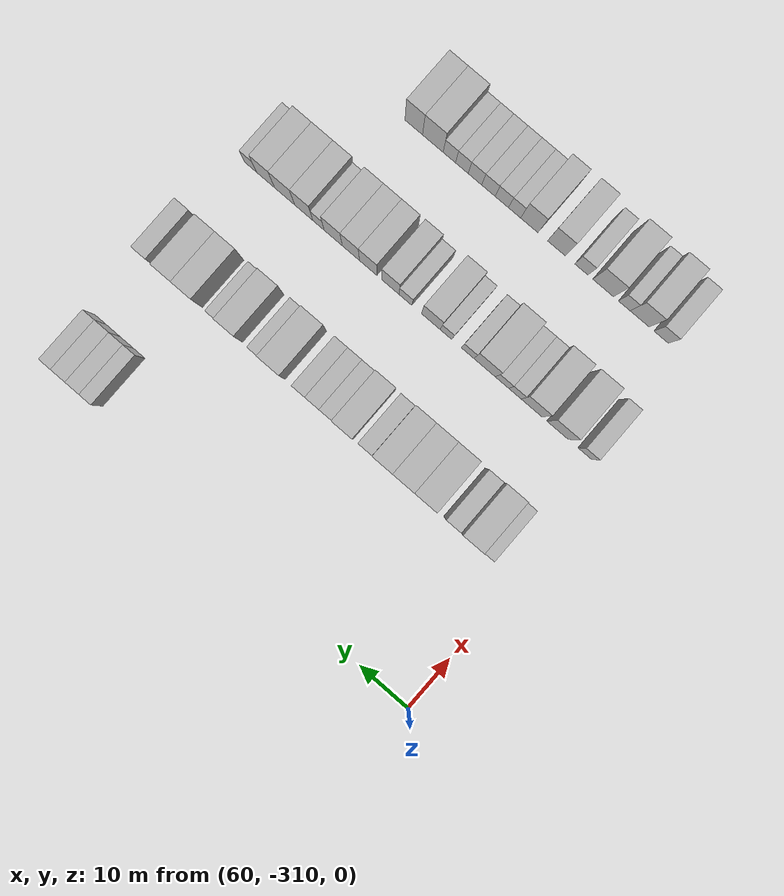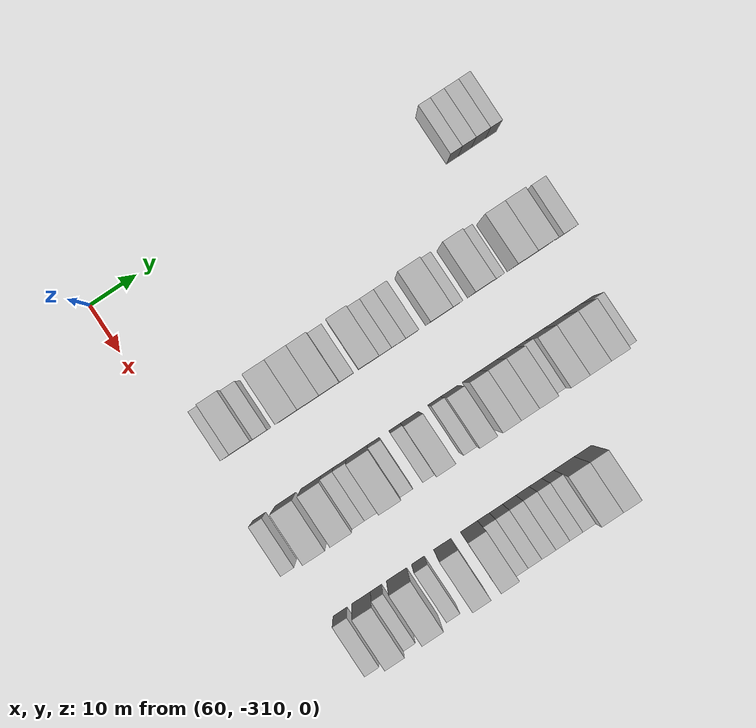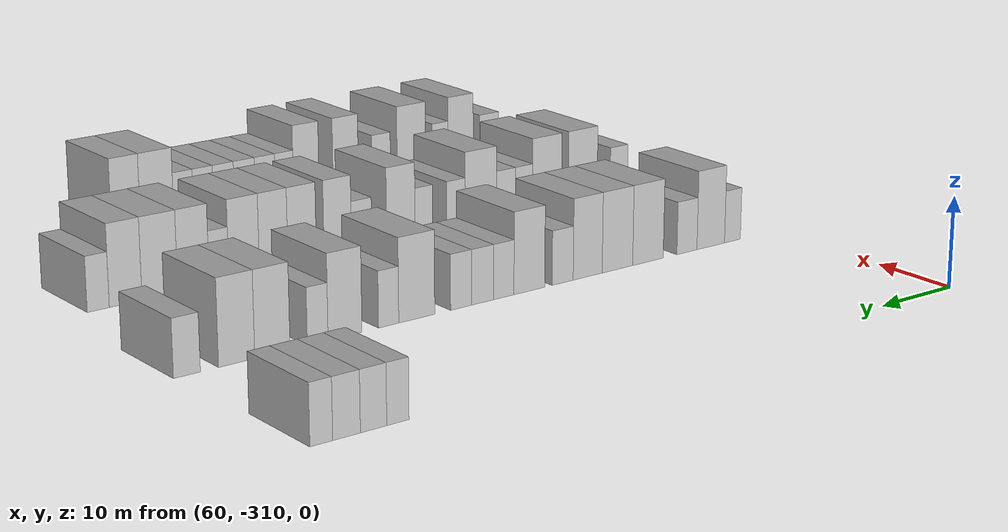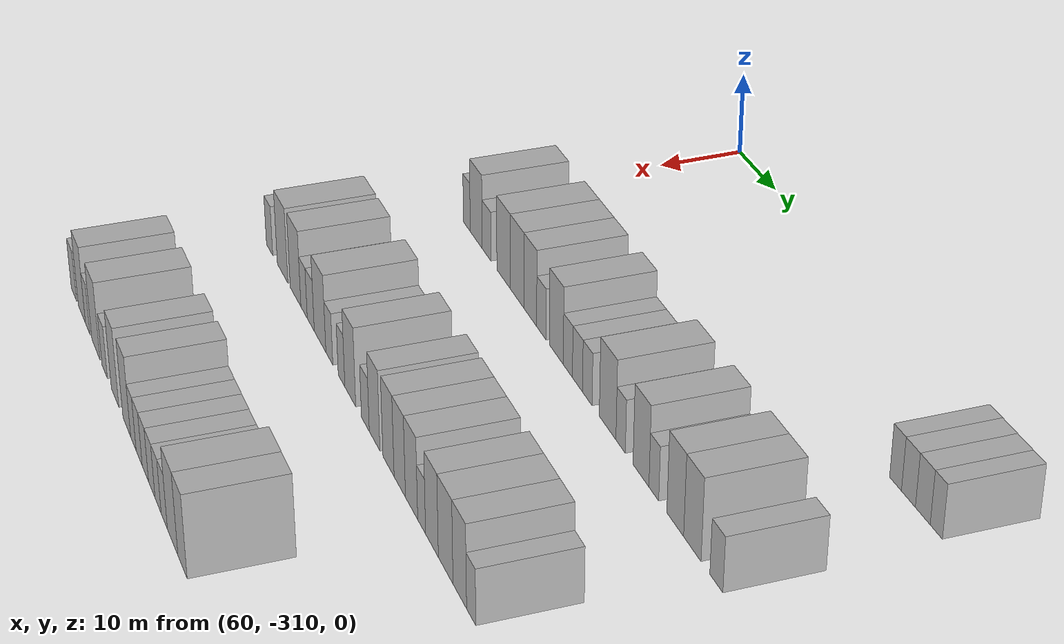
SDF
<sdf version="1.6">
 <world name="default">
  <model name="building_399">
   <static>1</static>
   <pose>69.0000 -241.7681 0 0.000000 0.000000 0.000000</pose>
   <link name="link">
    <pose>0 0 3.00 0 0 0</pose>
    <collision name="collision"><geometry><box><size>10.0000 2.4512 6.0000</size></box></geometry></collision>
    <visual name="visual">
     <cast_shadows>0</cast_shadows>
     <geometry><box><size>10.0000 2.4512 6.0000</size></box></geometry>
     <material>
      <script>
       <uri>model://HANNAS_wall/materials/scripts</uri>
       <uri>model://HANNAS_wall/materials/textures</uri>
       <name>vrc/HANNAS_wall</name>
      </script>
     </material>
    </visual>
   </link>
  </model>
  <model name="building_400">
   <static>1</static>
   <pose>69.0000 -239.1180 0 0.000000 0.000000 0.000000</pose>
   <link name="link">
    <pose>0 0 3.00 0 0 0</pose>
    <collision name="collision"><geometry><box><size>10.0000 2.8490 6.0000</size></box></geometry></collision>
    <visual name="visual">
     <cast_shadows>0</cast_shadows>
     <geometry><box><size>10.0000 2.8490 6.0000</size></box></geometry>
     <material>
      <script>
       <uri>model://HANNAS_wall/materials/scripts</uri>
       <uri>model://HANNAS_wall/materials/textures</uri>
       <name>vrc/HANNAS_wall</name>
      </script>
     </material>
    </visual>
   </link>
  </model>
  <model name="building_401">
   <static>1</static>
   <pose>69.0000 -236.2179 0 0.000000 0.000000 0.000000</pose>
   <link name="link">
    <pose>0 0 3.00 0 0 0</pose>
    <collision name="collision"><geometry><box><size>10.0000 2.9513 6.0000</size></box></geometry></collision>
    <visual name="visual">
     <cast_shadows>0</cast_shadows>
     <geometry><box><size>10.0000 2.9513 6.0000</size></box></geometry>
     <material>
      <script>
       <uri>model://HANNAS_wall/materials/scripts</uri>
       <uri>model://HANNAS_wall/materials/textures</uri>
       <name>vrc/HANNAS_wall</name>
      </script>
     </material>
    </visual>
   </link>
  </model>
  <model name="building_402">
   <static>1</static>
   <pose>69.0000 -233.5399 0 0.000000 0.000000 0.000000</pose>
   <link name="link">
    <pose>0 0 3.00 0 0 0</pose>
    <collision name="collision"><geometry><box><size>10.0000 2.4046 6.0000</size></box></geometry></collision>
    <visual name="visual">
     <cast_shadows>0</cast_shadows>
     <geometry><box><size>10.0000 2.4046 6.0000</size></box></geometry>
     <material>
      <script>
       <uri>model://HANNAS_wall/materials/scripts</uri>
       <uri>model://HANNAS_wall/materials/textures</uri>
       <name>vrc/HANNAS_wall</name>
      </script>
     </material>
    </visual>
   </link>
  </model>
  <model name="building_568">
   <static>1</static>
   <pose>91.0000 -303.2689 0 0.000000 0.000000 0.000000</pose>
   <link name="link">
    <pose>0 0 3.00 0 0 0</pose>
    <collision name="collision"><geometry><box><size>10.0000 2.4116 6.0000</size></box></geometry></collision>
    <visual name="visual">
     <cast_shadows>0</cast_shadows>
     <geometry><box><size>10.0000 2.4116 6.0000</size></box></geometry>
     <material>
      <script>
       <uri>model://HANNAS_wall/materials/scripts</uri>
       <uri>model://HANNAS_wall/materials/textures</uri>
       <name>vrc/HANNAS_wall</name>
      </script>
     </material>
    </visual>
   </link>
  </model>
  <model name="building_569">
   <static>1</static>
   <pose>91.0000 -299.9864 0 0.000000 0.000000 0.000000</pose>
   <link name="link">
    <pose>0 0 4.50 0 0 0</pose>
    <collision name="collision"><geometry><box><size>10.0000 4.1533 9.0000</size></box></geometry></collision>
    <visual name="visual">
     <cast_shadows>0</cast_shadows>
     <geometry><box><size>10.0000 4.1533 9.0000</size></box></geometry>
     <material>
      <script>
       <uri>model://HANNAS_wall/materials/scripts</uri>
       <uri>model://HANNAS_wall/materials/textures</uri>
       <name>vrc/HANNAS_wall</name>
      </script>
     </material>
    </visual>
   </link>
  </model>
  <model name="building_570">
   <static>1</static>
   <pose>91.0000 -296.4266 0 0.000000 0.000000 0.000000</pose>
   <link name="link">
    <pose>0 0 3.00 0 0 0</pose>
    <collision name="collision"><geometry><box><size>10.0000 2.9664 6.0000</size></box></geometry></collision>
    <visual name="visual">
     <cast_shadows>0</cast_shadows>
     <geometry><box><size>10.0000 2.9664 6.0000</size></box></geometry>
     <material>
      <script>
       <uri>model://HANNAS_wall/materials/scripts</uri>
       <uri>model://HANNAS_wall/materials/textures</uri>
       <name>vrc/HANNAS_wall</name>
      </script>
     </material>
    </visual>
   </link>
  </model>
  <model name="building_571">
   <static>1</static>
   <pose>91.0000 -290.7387 0 0.000000 0.000000 0.000000</pose>
   <link name="link">
    <pose>0 0 4.50 0 0 0</pose>
    <collision name="collision"><geometry><box><size>10.0000 4.4094 9.0000</size></box></geometry></collision>
    <visual name="visual">
     <cast_shadows>0</cast_shadows>
     <geometry><box><size>10.0000 4.4094 9.0000</size></box></geometry>
     <material>
      <script>
       <uri>model://HANNAS_wall/materials/scripts</uri>
       <uri>model://HANNAS_wall/materials/textures</uri>
       <name>vrc/HANNAS_wall</name>
      </script>
     </material>
    </visual>
   </link>
  </model>
  <model name="building_572">
   <static>1</static>
   <pose>91.0000 -286.3760 0 0.000000 0.000000 0.000000</pose>
   <link name="link">
    <pose>0 0 4.50 0 0 0</pose>
    <collision name="collision"><geometry><box><size>10.0000 4.3160 9.0000</size></box></geometry></collision>
    <visual name="visual">
     <cast_shadows>0</cast_shadows>
     <geometry><box><size>10.0000 4.3160 9.0000</size></box></geometry>
     <material>
      <script>
       <uri>model://HANNAS_wall/materials/scripts</uri>
       <uri>model://HANNAS_wall/materials/textures</uri>
       <name>vrc/HANNAS_wall</name>
      </script>
     </material>
    </visual>
   </link>
  </model>
  <model name="building_573">
   <static>1</static>
   <pose>91.0000 -282.2070 0 0.000000 0.000000 0.000000</pose>
   <link name="link">
    <pose>0 0 4.50 0 0 0</pose>
    <collision name="collision"><geometry><box><size>10.0000 4.0219 9.0000</size></box></geometry></collision>
    <visual name="visual">
     <cast_shadows>0</cast_shadows>
     <geometry><box><size>10.0000 4.0219 9.0000</size></box></geometry>
     <material>
      <script>
       <uri>model://HANNAS_wall/materials/scripts</uri>
       <uri>model://HANNAS_wall/materials/textures</uri>
       <name>vrc/HANNAS_wall</name>
      </script>
     </material>
    </visual>
   </link>
  </model>
  <model name="building_574">
   <static>1</static>
   <pose>91.0000 -278.7578 0 0.000000 0.000000 0.000000</pose>
   <link name="link">
    <pose>0 0 3.00 0 0 0</pose>
    <collision name="collision"><geometry><box><size>10.0000 2.8764 6.0000</size></box></geometry></collision>
    <visual name="visual">
     <cast_shadows>0</cast_shadows>
     <geometry><box><size>10.0000 2.8764 6.0000</size></box></geometry>
     <material>
      <script>
       <uri>model://HANNAS_wall/materials/scripts</uri>
       <uri>model://HANNAS_wall/materials/textures</uri>
       <name>vrc/HANNAS_wall</name>
      </script>
     </material>
    </visual>
   </link>
  </model>
  <model name="building_575">
   <static>1</static>
   <pose>91.0000 -274.2612 0 0.000000 0.000000 0.000000</pose>
   <link name="link">
    <pose>0 0 4.50 0 0 0</pose>
    <collision name="collision"><geometry><box><size>10.0000 4.1168 9.0000</size></box></geometry></collision>
    <visual name="visual">
     <cast_shadows>0</cast_shadows>
     <geometry><box><size>10.0000 4.1168 9.0000</size></box></geometry>
     <material>
      <script>
       <uri>model://HANNAS_wall/materials/scripts</uri>
       <uri>model://HANNAS_wall/materials/textures</uri>
       <name>vrc/HANNAS_wall</name>
      </script>
     </material>
    </visual>
   </link>
  </model>
  <model name="building_576">
   <static>1</static>
   <pose>91.0000 -270.8710 0 0.000000 0.000000 0.000000</pose>
   <link name="link">
    <pose>0 0 3.00 0 0 0</pose>
    <collision name="collision"><geometry><box><size>10.0000 2.6638 6.0000</size></box></geometry></collision>
    <visual name="visual">
     <cast_shadows>0</cast_shadows>
     <geometry><box><size>10.0000 2.6638 6.0000</size></box></geometry>
     <material>
      <script>
       <uri>model://HANNAS_wall/materials/scripts</uri>
       <uri>model://HANNAS_wall/materials/textures</uri>
       <name>vrc/HANNAS_wall</name>
      </script>
     </material>
    </visual>
   </link>
  </model>
  <model name="building_577">
   <static>1</static>
   <pose>91.0000 -268.1082 0 0.000000 0.000000 0.000000</pose>
   <link name="link">
    <pose>0 0 3.00 0 0 0</pose>
    <collision name="collision"><geometry><box><size>10.0000 2.8617 6.0000</size></box></geometry></collision>
    <visual name="visual">
     <cast_shadows>0</cast_shadows>
     <geometry><box><size>10.0000 2.8617 6.0000</size></box></geometry>
     <material>
      <script>
       <uri>model://HANNAS_wall/materials/scripts</uri>
       <uri>model://HANNAS_wall/materials/textures</uri>
       <name>vrc/HANNAS_wall</name>
      </script>
     </material>
    </visual>
   </link>
  </model>
  <model name="building_578">
   <static>1</static>
   <pose>91.0000 -265.3263 0 0.000000 0.000000 0.000000</pose>
   <link name="link">
    <pose>0 0 3.00 0 0 0</pose>
    <collision name="collision"><geometry><box><size>10.0000 2.7021 6.0000</size></box></geometry></collision>
    <visual name="visual">
     <cast_shadows>0</cast_shadows>
     <geometry><box><size>10.0000 2.7021 6.0000</size></box></geometry>
     <material>
      <script>
       <uri>model://HANNAS_wall/materials/scripts</uri>
       <uri>model://HANNAS_wall/materials/textures</uri>
       <name>vrc/HANNAS_wall</name>
      </script>
     </material>
    </visual>
   </link>
  </model>
  <model name="building_579">
   <static>1</static>
   <pose>91.0000 -259.7310 0 0.000000 0.000000 0.000000</pose>
   <link name="link">
    <pose>0 0 4.50 0 0 0</pose>
    <collision name="collision"><geometry><box><size>10.0000 4.4884 9.0000</size></box></geometry></collision>
    <visual name="visual">
     <cast_shadows>0</cast_shadows>
     <geometry><box><size>10.0000 4.4884 9.0000</size></box></geometry>
     <material>
      <script>
       <uri>model://HANNAS_wall/materials/scripts</uri>
       <uri>model://HANNAS_wall/materials/textures</uri>
       <name>vrc/HANNAS_wall</name>
      </script>
     </material>
    </visual>
   </link>
  </model>
  <model name="building_580">
   <static>1</static>
   <pose>91.0000 -256.2439 0 0.000000 0.000000 0.000000</pose>
   <link name="link">
    <pose>0 0 3.00 0 0 0</pose>
    <collision name="collision"><geometry><box><size>10.0000 2.4859 6.0000</size></box></geometry></collision>
    <visual name="visual">
     <cast_shadows>0</cast_shadows>
     <geometry><box><size>10.0000 2.4859 6.0000</size></box></geometry>
     <material>
      <script>
       <uri>model://HANNAS_wall/materials/scripts</uri>
       <uri>model://HANNAS_wall/materials/textures</uri>
       <name>vrc/HANNAS_wall</name>
      </script>
     </material>
    </visual>
   </link>
  </model>
  <model name="building_581">
   <static>1</static>
   <pose>91.0000 -250.9761 0 0.000000 0.000000 0.000000</pose>
   <link name="link">
    <pose>0 0 4.50 0 0 0</pose>
    <collision name="collision"><geometry><box><size>10.0000 4.0495 9.0000</size></box></geometry></collision>
    <visual name="visual">
     <cast_shadows>0</cast_shadows>
     <geometry><box><size>10.0000 4.0495 9.0000</size></box></geometry>
     <material>
      <script>
       <uri>model://HANNAS_wall/materials/scripts</uri>
       <uri>model://HANNAS_wall/materials/textures</uri>
       <name>vrc/HANNAS_wall</name>
      </script>
     </material>
    </visual>
   </link>
  </model>
  <model name="building_582">
   <static>1</static>
   <pose>91.0000 -247.7308 0 0.000000 0.000000 0.000000</pose>
   <link name="link">
    <pose>0 0 3.00 0 0 0</pose>
    <collision name="collision"><geometry><box><size>10.0000 2.4411 6.0000</size></box></geometry></collision>
    <visual name="visual">
     <cast_shadows>0</cast_shadows>
     <geometry><box><size>10.0000 2.4411 6.0000</size></box></geometry>
     <material>
      <script>
       <uri>model://HANNAS_wall/materials/scripts</uri>
       <uri>model://HANNAS_wall/materials/textures</uri>
       <name>vrc/HANNAS_wall</name>
      </script>
     </material>
    </visual>
   </link>
  </model>
  <model name="building_583">
   <static>1</static>
   <pose>91.0000 -242.4921 0 0.000000 0.000000 0.000000</pose>
   <link name="link">
    <pose>0 0 4.50 0 0 0</pose>
    <collision name="collision"><geometry><box><size>10.0000 4.0363 9.0000</size></box></geometry></collision>
    <visual name="visual">
     <cast_shadows>0</cast_shadows>
     <geometry><box><size>10.0000 4.0363 9.0000</size></box></geometry>
     <material>
      <script>
       <uri>model://HANNAS_wall/materials/scripts</uri>
       <uri>model://HANNAS_wall/materials/textures</uri>
       <name>vrc/HANNAS_wall</name>
      </script>
     </material>
    </visual>
   </link>
  </model>
  <model name="building_584">
   <static>1</static>
   <pose>91.0000 -238.4407 0 0.000000 0.000000 0.000000</pose>
   <link name="link">
    <pose>0 0 4.50 0 0 0</pose>
    <collision name="collision"><geometry><box><size>10.0000 4.0667 9.0000</size></box></geometry></collision>
    <visual name="visual">
     <cast_shadows>0</cast_shadows>
     <geometry><box><size>10.0000 4.0667 9.0000</size></box></geometry>
     <material>
      <script>
       <uri>model://HANNAS_wall/materials/scripts</uri>
       <uri>model://HANNAS_wall/materials/textures</uri>
       <name>vrc/HANNAS_wall</name>
      </script>
     </material>
    </visual>
   </link>
  </model>
  <model name="building_585">
   <static>1</static>
   <pose>91.0000 -232.9365 0 0.000000 0.000000 0.000000</pose>
   <link name="link">
    <pose>0 0 3.00 0 0 0</pose>
    <collision name="collision"><geometry><box><size>10.0000 2.9417 6.0000</size></box></geometry></collision>
    <visual name="visual">
     <cast_shadows>0</cast_shadows>
     <geometry><box><size>10.0000 2.9417 6.0000</size></box></geometry>
     <material>
      <script>
       <uri>model://HANNAS_wall/materials/scripts</uri>
       <uri>model://HANNAS_wall/materials/textures</uri>
       <name>vrc/HANNAS_wall</name>
      </script>
     </material>
    </visual>
   </link>
  </model>
  <model name="building_755">
   <static>1</static>
   <pose>113.0000 -305.3248 0 0.000000 0.000000 0.000000</pose>
   <link name="link">
    <pose>0 0 3.00 0 0 0</pose>
    <collision name="collision"><geometry><box><size>10.0000 2.7293 6.0000</size></box></geometry></collision>
    <visual name="visual">
     <cast_shadows>0</cast_shadows>
     <geometry><box><size>10.0000 2.7293 6.0000</size></box></geometry>
     <material>
      <script>
       <uri>model://HANNAS_wall/materials/scripts</uri>
       <uri>model://HANNAS_wall/materials/textures</uri>
       <name>vrc/HANNAS_wall</name>
      </script>
     </material>
    </visual>
   </link>
  </model>
  <model name="building_756">
   <static>1</static>
   <pose>113.0000 -299.7419 0 0.000000 0.000000 0.000000</pose>
   <link name="link">
    <pose>0 0 4.50 0 0 0</pose>
    <collision name="collision"><geometry><box><size>10.0000 4.4365 9.0000</size></box></geometry></collision>
    <visual name="visual">
     <cast_shadows>0</cast_shadows>
     <geometry><box><size>10.0000 4.4365 9.0000</size></box></geometry>
     <material>
      <script>
       <uri>model://HANNAS_wall/materials/scripts</uri>
       <uri>model://HANNAS_wall/materials/textures</uri>
       <name>vrc/HANNAS_wall</name>
      </script>
     </material>
    </visual>
   </link>
  </model>
  <model name="building_757">
   <static>1</static>
   <pose>113.0000 -294.3488 0 0.000000 0.000000 0.000000</pose>
   <link name="link">
    <pose>0 0 4.50 0 0 0</pose>
    <collision name="collision"><geometry><box><size>10.0000 4.3496 9.0000</size></box></geometry></collision>
    <visual name="visual">
     <cast_shadows>0</cast_shadows>
     <geometry><box><size>10.0000 4.3496 9.0000</size></box></geometry>
     <material>
      <script>
       <uri>model://HANNAS_wall/materials/scripts</uri>
       <uri>model://HANNAS_wall/materials/textures</uri>
       <name>vrc/HANNAS_wall</name>
      </script>
     </material>
    </visual>
   </link>
  </model>
  <model name="building_758">
   <static>1</static>
   <pose>113.0000 -290.9060 0 0.000000 0.000000 0.000000</pose>
   <link name="link">
    <pose>0 0 3.00 0 0 0</pose>
    <collision name="collision"><geometry><box><size>10.0000 2.5361 6.0000</size></box></geometry></collision>
    <visual name="visual">
     <cast_shadows>0</cast_shadows>
     <geometry><box><size>10.0000 2.5361 6.0000</size></box></geometry>
     <material>
      <script>
       <uri>model://HANNAS_wall/materials/scripts</uri>
       <uri>model://HANNAS_wall/materials/textures</uri>
       <name>vrc/HANNAS_wall</name>
      </script>
     </material>
    </visual>
   </link>
  </model>
  <model name="building_759">
   <static>1</static>
   <pose>113.0000 -288.2516 0 0.000000 0.000000 0.000000</pose>
   <link name="link">
    <pose>0 0 3.00 0 0 0</pose>
    <collision name="collision"><geometry><box><size>10.0000 2.7727 6.0000</size></box></geometry></collision>
    <visual name="visual">
     <cast_shadows>0</cast_shadows>
     <geometry><box><size>10.0000 2.7727 6.0000</size></box></geometry>
     <material>
      <script>
       <uri>model://HANNAS_wall/materials/scripts</uri>
       <uri>model://HANNAS_wall/materials/textures</uri>
       <name>vrc/HANNAS_wall</name>
      </script>
     </material>
    </visual>
   </link>
  </model>
  <model name="building_760">
   <static>1</static>
   <pose>113.0000 -284.6322 0 0.000000 0.000000 0.000000</pose>
   <link name="link">
    <pose>0 0 4.50 0 0 0</pose>
    <collision name="collision"><geometry><box><size>10.0000 4.4661 9.0000</size></box></geometry></collision>
    <visual name="visual">
     <cast_shadows>0</cast_shadows>
     <geometry><box><size>10.0000 4.4661 9.0000</size></box></geometry>
     <material>
      <script>
       <uri>model://HANNAS_wall/materials/scripts</uri>
       <uri>model://HANNAS_wall/materials/textures</uri>
       <name>vrc/HANNAS_wall</name>
      </script>
     </material>
    </visual>
   </link>
  </model>
  <model name="building_761">
   <static>1</static>
   <pose>113.0000 -281.0921 0 0.000000 0.000000 0.000000</pose>
   <link name="link">
    <pose>0 0 3.00 0 0 0</pose>
    <collision name="collision"><geometry><box><size>10.0000 2.6141 6.0000</size></box></geometry></collision>
    <visual name="visual">
     <cast_shadows>0</cast_shadows>
     <geometry><box><size>10.0000 2.6141 6.0000</size></box></geometry>
     <material>
      <script>
       <uri>model://HANNAS_wall/materials/scripts</uri>
       <uri>model://HANNAS_wall/materials/textures</uri>
       <name>vrc/HANNAS_wall</name>
      </script>
     </material>
    </visual>
   </link>
  </model>
  <model name="building_762">
   <static>1</static>
   <pose>113.0000 -276.5707 0 0.000000 0.000000 0.000000</pose>
   <link name="link">
    <pose>0 0 3.00 0 0 0</pose>
    <collision name="collision"><geometry><box><size>10.0000 2.4287 6.0000</size></box></geometry></collision>
    <visual name="visual">
     <cast_shadows>0</cast_shadows>
     <geometry><box><size>10.0000 2.4287 6.0000</size></box></geometry>
     <material>
      <script>
       <uri>model://HANNAS_wall/materials/scripts</uri>
       <uri>model://HANNAS_wall/materials/textures</uri>
       <name>vrc/HANNAS_wall</name>
      </script>
     </material>
    </visual>
   </link>
  </model>
  <model name="building_763">
   <static>1</static>
   <pose>113.0000 -273.4103 0 0.000000 0.000000 0.000000</pose>
   <link name="link">
    <pose>0 0 4.50 0 0 0</pose>
    <collision name="collision"><geometry><box><size>10.0000 3.8921 9.0000</size></box></geometry></collision>
    <visual name="visual">
     <cast_shadows>0</cast_shadows>
     <geometry><box><size>10.0000 3.8921 9.0000</size></box></geometry>
     <material>
      <script>
       <uri>model://HANNAS_wall/materials/scripts</uri>
       <uri>model://HANNAS_wall/materials/textures</uri>
       <name>vrc/HANNAS_wall</name>
      </script>
     </material>
    </visual>
   </link>
  </model>
  <model name="building_764">
   <static>1</static>
   <pose>113.0000 -268.1055 0 0.000000 0.000000 0.000000</pose>
   <link name="link">
    <pose>0 0 3.00 0 0 0</pose>
    <collision name="collision"><geometry><box><size>10.0000 2.7176 6.0000</size></box></geometry></collision>
    <visual name="visual">
     <cast_shadows>0</cast_shadows>
     <geometry><box><size>10.0000 2.7176 6.0000</size></box></geometry>
     <material>
      <script>
       <uri>model://HANNAS_wall/materials/scripts</uri>
       <uri>model://HANNAS_wall/materials/textures</uri>
       <name>vrc/HANNAS_wall</name>
      </script>
     </material>
    </visual>
   </link>
  </model>
  <model name="building_765">
   <static>1</static>
   <pose>113.0000 -264.9427 0 0.000000 0.000000 0.000000</pose>
   <link name="link">
    <pose>0 0 4.50 0 0 0</pose>
    <collision name="collision"><geometry><box><size>10.0000 3.6080 9.0000</size></box></geometry></collision>
    <visual name="visual">
     <cast_shadows>0</cast_shadows>
     <geometry><box><size>10.0000 3.6080 9.0000</size></box></geometry>
     <material>
      <script>
       <uri>model://HANNAS_wall/materials/scripts</uri>
       <uri>model://HANNAS_wall/materials/textures</uri>
       <name>vrc/HANNAS_wall</name>
      </script>
     </material>
    </visual>
   </link>
  </model>
  <model name="building_766">
   <static>1</static>
   <pose>113.0000 -260.3034 0 0.000000 0.000000 0.000000</pose>
   <link name="link">
    <pose>0 0 4.50 0 0 0</pose>
    <collision name="collision"><geometry><box><size>10.0000 3.6706 9.0000</size></box></geometry></collision>
    <visual name="visual">
     <cast_shadows>0</cast_shadows>
     <geometry><box><size>10.0000 3.6706 9.0000</size></box></geometry>
     <material>
      <script>
       <uri>model://HANNAS_wall/materials/scripts</uri>
       <uri>model://HANNAS_wall/materials/textures</uri>
       <name>vrc/HANNAS_wall</name>
      </script>
     </material>
    </visual>
   </link>
  </model>
  <model name="building_767">
   <static>1</static>
   <pose>113.0000 -256.6514 0 0.000000 0.000000 0.000000</pose>
   <link name="link">
    <pose>0 0 4.50 0 0 0</pose>
    <collision name="collision"><geometry><box><size>10.0000 3.6334 9.0000</size></box></geometry></collision>
    <visual name="visual">
     <cast_shadows>0</cast_shadows>
     <geometry><box><size>10.0000 3.6334 9.0000</size></box></geometry>
     <material>
      <script>
       <uri>model://HANNAS_wall/materials/scripts</uri>
       <uri>model://HANNAS_wall/materials/textures</uri>
       <name>vrc/HANNAS_wall</name>
      </script>
     </material>
    </visual>
   </link>
  </model>
  <model name="building_768">
   <static>1</static>
   <pose>113.0000 -252.9232 0 0.000000 0.000000 0.000000</pose>
   <link name="link">
    <pose>0 0 4.50 0 0 0</pose>
    <collision name="collision"><geometry><box><size>10.0000 3.8230 9.0000</size></box></geometry></collision>
    <visual name="visual">
     <cast_shadows>0</cast_shadows>
     <geometry><box><size>10.0000 3.8230 9.0000</size></box></geometry>
     <material>
      <script>
       <uri>model://HANNAS_wall/materials/scripts</uri>
       <uri>model://HANNAS_wall/materials/textures</uri>
       <name>vrc/HANNAS_wall</name>
      </script>
     </material>
    </visual>
   </link>
  </model>
  <model name="building_769">
   <static>1</static>
   <pose>113.0000 -249.8101 0 0.000000 0.000000 0.000000</pose>
   <link name="link">
    <pose>0 0 3.00 0 0 0</pose>
    <collision name="collision"><geometry><box><size>10.0000 2.4033 6.0000</size></box></geometry></collision>
    <visual name="visual">
     <cast_shadows>0</cast_shadows>
     <geometry><box><size>10.0000 2.4033 6.0000</size></box></geometry>
     <material>
      <script>
       <uri>model://HANNAS_wall/materials/scripts</uri>
       <uri>model://HANNAS_wall/materials/textures</uri>
       <name>vrc/HANNAS_wall</name>
      </script>
     </material>
    </visual>
   </link>
  </model>
  <model name="building_770">
   <static>1</static>
   <pose>113.0000 -246.6991 0 0.000000 0.000000 0.000000</pose>
   <link name="link">
    <pose>0 0 4.50 0 0 0</pose>
    <collision name="collision"><geometry><box><size>10.0000 3.8186 9.0000</size></box></geometry></collision>
    <visual name="visual">
     <cast_shadows>0</cast_shadows>
     <geometry><box><size>10.0000 3.8186 9.0000</size></box></geometry>
     <material>
      <script>
       <uri>model://HANNAS_wall/materials/scripts</uri>
       <uri>model://HANNAS_wall/materials/textures</uri>
       <name>vrc/HANNAS_wall</name>
      </script>
     </material>
    </visual>
   </link>
  </model>
  <model name="building_771">
   <static>1</static>
   <pose>113.0000 -242.6615 0 0.000000 0.000000 0.000000</pose>
   <link name="link">
    <pose>0 0 4.50 0 0 0</pose>
    <collision name="collision"><geometry><box><size>10.0000 4.2566 9.0000</size></box></geometry></collision>
    <visual name="visual">
     <cast_shadows>0</cast_shadows>
     <geometry><box><size>10.0000 4.2566 9.0000</size></box></geometry>
     <material>
      <script>
       <uri>model://HANNAS_wall/materials/scripts</uri>
       <uri>model://HANNAS_wall/materials/textures</uri>
       <name>vrc/HANNAS_wall</name>
      </script>
     </material>
    </visual>
   </link>
  </model>
  <model name="building_772">
   <static>1</static>
   <pose>113.0000 -238.6235 0 0.000000 0.000000 0.000000</pose>
   <link name="link">
    <pose>0 0 4.50 0 0 0</pose>
    <collision name="collision"><geometry><box><size>10.0000 3.8193 9.0000</size></box></geometry></collision>
    <visual name="visual">
     <cast_shadows>0</cast_shadows>
     <geometry><box><size>10.0000 3.8193 9.0000</size></box></geometry>
     <material>
      <script>
       <uri>model://HANNAS_wall/materials/scripts</uri>
       <uri>model://HANNAS_wall/materials/textures</uri>
       <name>vrc/HANNAS_wall</name>
      </script>
     </material>
    </visual>
   </link>
  </model>
  <model name="building_773">
   <static>1</static>
   <pose>113.0000 -235.4435 0 0.000000 0.000000 0.000000</pose>
   <link name="link">
    <pose>0 0 3.00 0 0 0</pose>
    <collision name="collision"><geometry><box><size>10.0000 2.5408 6.0000</size></box></geometry></collision>
    <visual name="visual">
     <cast_shadows>0</cast_shadows>
     <geometry><box><size>10.0000 2.5408 6.0000</size></box></geometry>
     <material>
      <script>
       <uri>model://HANNAS_wall/materials/scripts</uri>
       <uri>model://HANNAS_wall/materials/textures</uri>
       <name>vrc/HANNAS_wall</name>
      </script>
     </material>
    </visual>
   </link>
  </model>
  <model name="building_949">
   <static>1</static>
   <pose>135.0000 -302.6649 0 0.000000 0.000000 0.000000</pose>
   <link name="link">
    <pose>0 0 3.00 0 0 0</pose>
    <collision name="collision"><geometry><box><size>10.0000 2.9753 6.0000</size></box></geometry></collision>
    <visual name="visual">
     <cast_shadows>0</cast_shadows>
     <geometry><box><size>10.0000 2.9753 6.0000</size></box></geometry>
     <material>
      <script>
       <uri>model://HANNAS_wall/materials/scripts</uri>
       <uri>model://HANNAS_wall/materials/textures</uri>
       <name>vrc/HANNAS_wall</name>
      </script>
     </material>
    </visual>
   </link>
  </model>
  <model name="building_950">
   <static>1</static>
   <pose>135.0000 -298.2124 0 0.000000 0.000000 0.000000</pose>
   <link name="link">
    <pose>0 0 4.50 0 0 0</pose>
    <collision name="collision"><geometry><box><size>10.0000 3.9296 9.0000</size></box></geometry></collision>
    <visual name="visual">
     <cast_shadows>0</cast_shadows>
     <geometry><box><size>10.0000 3.9296 9.0000</size></box></geometry>
     <material>
      <script>
       <uri>model://HANNAS_wall/materials/scripts</uri>
       <uri>model://HANNAS_wall/materials/textures</uri>
       <name>vrc/HANNAS_wall</name>
      </script>
     </material>
    </visual>
   </link>
  </model>
  <model name="building_951">
   <static>1</static>
   <pose>135.0000 -295.0360 0 0.000000 0.000000 0.000000</pose>
   <link name="link">
    <pose>0 0 3.00 0 0 0</pose>
    <collision name="collision"><geometry><box><size>10.0000 2.4233 6.0000</size></box></geometry></collision>
    <visual name="visual">
     <cast_shadows>0</cast_shadows>
     <geometry><box><size>10.0000 2.4233 6.0000</size></box></geometry>
     <material>
      <script>
       <uri>model://HANNAS_wall/materials/scripts</uri>
       <uri>model://HANNAS_wall/materials/textures</uri>
       <name>vrc/HANNAS_wall</name>
      </script>
     </material>
    </visual>
   </link>
  </model>
  <model name="building_952">
   <static>1</static>
   <pose>135.0000 -290.6653 0 0.000000 0.000000 0.000000</pose>
   <link name="link">
    <pose>0 0 4.50 0 0 0</pose>
    <collision name="collision"><geometry><box><size>10.0000 4.3181 9.0000</size></box></geometry></collision>
    <visual name="visual">
     <cast_shadows>0</cast_shadows>
     <geometry><box><size>10.0000 4.3181 9.0000</size></box></geometry>
     <material>
      <script>
       <uri>model://HANNAS_wall/materials/scripts</uri>
       <uri>model://HANNAS_wall/materials/textures</uri>
       <name>vrc/HANNAS_wall</name>
      </script>
     </material>
    </visual>
   </link>
  </model>
  <model name="building_953">
   <static>1</static>
   <pose>135.0000 -286.1339 0 0.000000 0.000000 0.000000</pose>
   <link name="link">
    <pose>0 0 3.00 0 0 0</pose>
    <collision name="collision"><geometry><box><size>10.0000 2.7447 6.0000</size></box></geometry></collision>
    <visual name="visual">
     <cast_shadows>0</cast_shadows>
     <geometry><box><size>10.0000 2.7447 6.0000</size></box></geometry>
     <material>
      <script>
       <uri>model://HANNAS_wall/materials/scripts</uri>
       <uri>model://HANNAS_wall/materials/textures</uri>
       <name>vrc/HANNAS_wall</name>
      </script>
     </material>
    </visual>
   </link>
  </model>
  <model name="building_954">
   <static>1</static>
   <pose>135.0000 -280.9197 0 0.000000 0.000000 0.000000</pose>
   <link name="link">
    <pose>0 0 4.50 0 0 0</pose>
    <collision name="collision"><geometry><box><size>10.0000 3.6836 9.0000</size></box></geometry></collision>
    <visual name="visual">
     <cast_shadows>0</cast_shadows>
     <geometry><box><size>10.0000 3.6836 9.0000</size></box></geometry>
     <material>
      <script>
       <uri>model://HANNAS_wall/materials/scripts</uri>
       <uri>model://HANNAS_wall/materials/textures</uri>
       <name>vrc/HANNAS_wall</name>
      </script>
     </material>
    </visual>
   </link>
  </model>
  <model name="building_955">
   <static>1</static>
   <pose>135.0000 -275.2554 0 0.000000 0.000000 0.000000</pose>
   <link name="link">
    <pose>0 0 4.50 0 0 0</pose>
    <collision name="collision"><geometry><box><size>10.0000 3.6450 9.0000</size></box></geometry></collision>
    <visual name="visual">
     <cast_shadows>0</cast_shadows>
     <geometry><box><size>10.0000 3.6450 9.0000</size></box></geometry>
     <material>
      <script>
       <uri>model://HANNAS_wall/materials/scripts</uri>
       <uri>model://HANNAS_wall/materials/textures</uri>
       <name>vrc/HANNAS_wall</name>
      </script>
     </material>
    </visual>
   </link>
  </model>
  <model name="building_956">
   <static>1</static>
   <pose>135.0000 -272.1571 0 0.000000 0.000000 0.000000</pose>
   <link name="link">
    <pose>0 0 3.00 0 0 0</pose>
    <collision name="collision"><geometry><box><size>10.0000 2.5516 6.0000</size></box></geometry></collision>
    <visual name="visual">
     <cast_shadows>0</cast_shadows>
     <geometry><box><size>10.0000 2.5516 6.0000</size></box></geometry>
     <material>
      <script>
       <uri>model://HANNAS_wall/materials/scripts</uri>
       <uri>model://HANNAS_wall/materials/textures</uri>
       <name>vrc/HANNAS_wall</name>
      </script>
     </material>
    </visual>
   </link>
  </model>
  <model name="building_957">
   <static>1</static>
   <pose>135.0000 -269.4852 0 0.000000 0.000000 0.000000</pose>
   <link name="link">
    <pose>0 0 3.00 0 0 0</pose>
    <collision name="collision"><geometry><box><size>10.0000 2.7922 6.0000</size></box></geometry></collision>
    <visual name="visual">
     <cast_shadows>0</cast_shadows>
     <geometry><box><size>10.0000 2.7922 6.0000</size></box></geometry>
     <material>
      <script>
       <uri>model://HANNAS_wall/materials/scripts</uri>
       <uri>model://HANNAS_wall/materials/textures</uri>
       <name>vrc/HANNAS_wall</name>
      </script>
     </material>
    </visual>
   </link>
  </model>
  <model name="building_958">
   <static>1</static>
   <pose>135.0000 -266.6695 0 0.000000 0.000000 0.000000</pose>
   <link name="link">
    <pose>0 0 3.00 0 0 0</pose>
    <collision name="collision"><geometry><box><size>10.0000 2.8392 6.0000</size></box></geometry></collision>
    <visual name="visual">
     <cast_shadows>0</cast_shadows>
     <geometry><box><size>10.0000 2.8392 6.0000</size></box></geometry>
     <material>
      <script>
       <uri>model://HANNAS_wall/materials/scripts</uri>
       <uri>model://HANNAS_wall/materials/textures</uri>
       <name>vrc/HANNAS_wall</name>
      </script>
     </material>
    </visual>
   </link>
  </model>
  <model name="building_959">
   <static>1</static>
   <pose>135.0000 -263.8249 0 0.000000 0.000000 0.000000</pose>
   <link name="link">
    <pose>0 0 3.00 0 0 0</pose>
    <collision name="collision"><geometry><box><size>10.0000 2.8501 6.0000</size></box></geometry></collision>
    <visual name="visual">
     <cast_shadows>0</cast_shadows>
     <geometry><box><size>10.0000 2.8501 6.0000</size></box></geometry>
     <material>
      <script>
       <uri>model://HANNAS_wall/materials/scripts</uri>
       <uri>model://HANNAS_wall/materials/textures</uri>
       <name>vrc/HANNAS_wall</name>
      </script>
     </material>
    </visual>
   </link>
  </model>
  <model name="building_960">
   <static>1</static>
   <pose>135.0000 -261.0745 0 0.000000 0.000000 0.000000</pose>
   <link name="link">
    <pose>0 0 3.00 0 0 0</pose>
    <collision name="collision"><geometry><box><size>10.0000 2.6506 6.0000</size></box></geometry></collision>
    <visual name="visual">
     <cast_shadows>0</cast_shadows>
     <geometry><box><size>10.0000 2.6506 6.0000</size></box></geometry>
     <material>
      <script>
       <uri>model://HANNAS_wall/materials/scripts</uri>
       <uri>model://HANNAS_wall/materials/textures</uri>
       <name>vrc/HANNAS_wall</name>
      </script>
     </material>
    </visual>
   </link>
  </model>
  <model name="building_961">
   <static>1</static>
   <pose>135.0000 -258.4383 0 0.000000 0.000000 0.000000</pose>
   <link name="link">
    <pose>0 0 3.00 0 0 0</pose>
    <collision name="collision"><geometry><box><size>10.0000 2.6219 6.0000</size></box></geometry></collision>
    <visual name="visual">
     <cast_shadows>0</cast_shadows>
     <geometry><box><size>10.0000 2.6219 6.0000</size></box></geometry>
     <material>
      <script>
       <uri>model://HANNAS_wall/materials/scripts</uri>
       <uri>model://HANNAS_wall/materials/textures</uri>
       <name>vrc/HANNAS_wall</name>
      </script>
     </material>
    </visual>
   </link>
  </model>
  <model name="building_962">
   <static>1</static>
   <pose>135.0000 -254.9541 0 0.000000 0.000000 0.000000</pose>
   <link name="link">
    <pose>0 0 4.50 0 0 0</pose>
    <collision name="collision"><geometry><box><size>10.0000 4.3465 9.0000</size></box></geometry></collision>
    <visual name="visual">
     <cast_shadows>0</cast_shadows>
     <geometry><box><size>10.0000 4.3465 9.0000</size></box></geometry>
     <material>
      <script>
       <uri>model://HANNAS_wall/materials/scripts</uri>
       <uri>model://HANNAS_wall/materials/textures</uri>
       <name>vrc/HANNAS_wall</name>
      </script>
     </material>
    </visual>
   </link>
  </model>
  <model name="building_963">
   <static>1</static>
   <pose>135.0000 -250.9225 0 0.000000 0.000000 0.000000</pose>
   <link name="link">
    <pose>0 0 4.50 0 0 0</pose>
    <collision name="collision"><geometry><box><size>10.0000 3.7168 9.0000</size></box></geometry></collision>
    <visual name="visual">
     <cast_shadows>0</cast_shadows>
     <geometry><box><size>10.0000 3.7168 9.0000</size></box></geometry>
     <material>
      <script>
       <uri>model://HANNAS_wall/materials/scripts</uri>
       <uri>model://HANNAS_wall/materials/textures</uri>
       <name>vrc/HANNAS_wall</name>
      </script>
     </material>
    </visual>
   </link>
  </model>
 </world>
</sdf>
